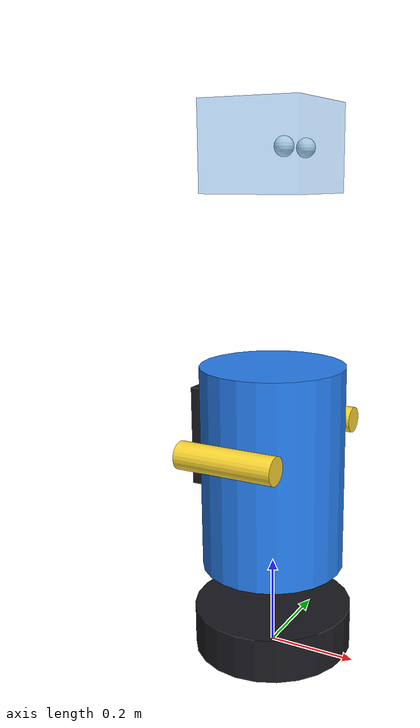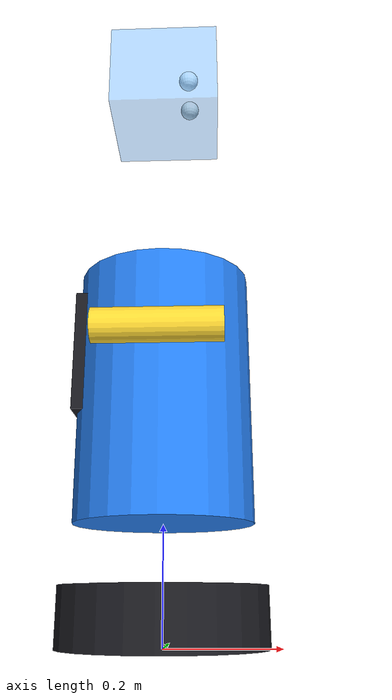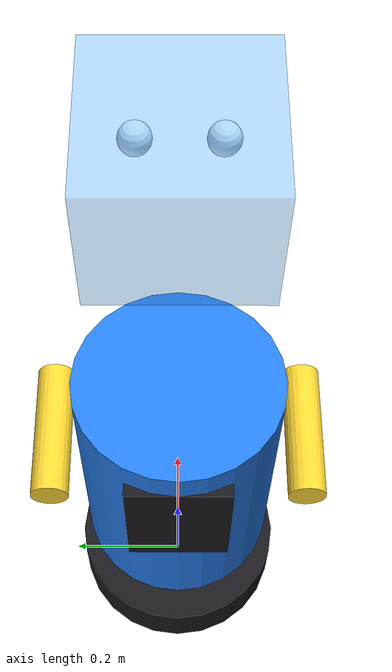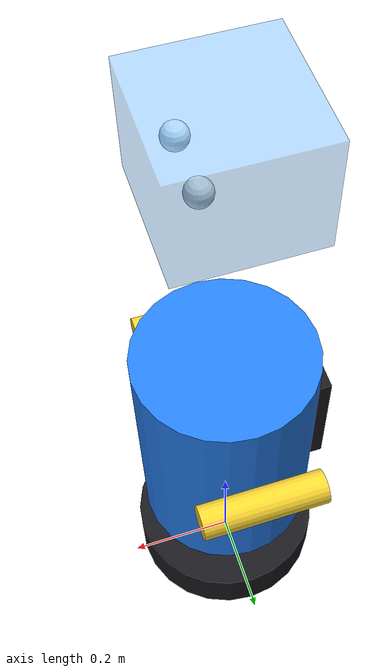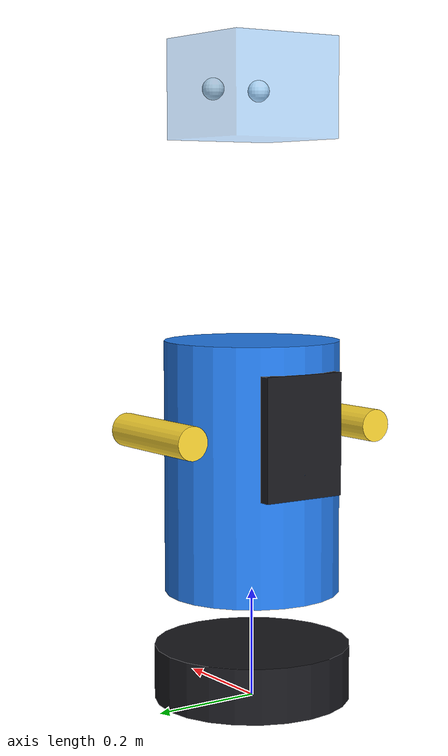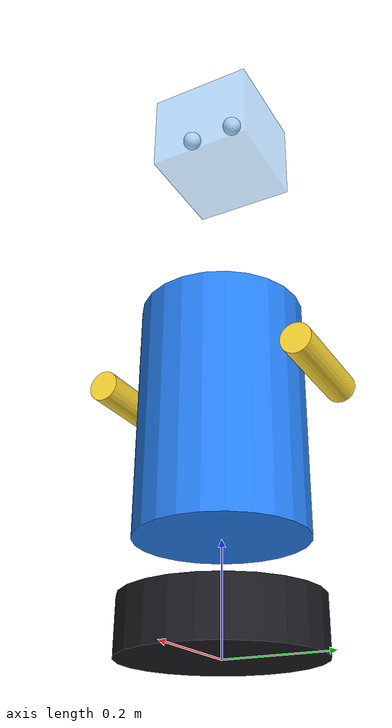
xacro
<?xml version="1.0"?>
<robot xmlns:xacro="http://www.ros.org/wiki/xacro" name="fe_unit">

  <!-- ======= 可调参数 ======= -->
<xacro:property name="scale"        value="1.0"/>
<xacro:property name="body_color"   value="0.15 0.5 0.95 1"/>
<xacro:property name="accent_color" value="1 0.85 0.2 1"/>
<xacro:property name="eye_color"    value="0.95 1 1 1"/>
<xacro:property name="dark"         value="0.1 0.1 0.12 1"/>
  <!-- 简化惯量 -->
  <xacro:macro name="simple_inertia" params="mass">
    <inertial>
      <mass value="${mass}"/>
      <origin xyz="0 0 0" rpy="0 0 0"/>
      <!-- 各向相同的小惯量，防止 RSP/URDF 警告 -->
      <inertia ixx="0.02" ixy="0" ixz="0" iyy="0.02" iyz="0" izz="0.02"/>
    </inertial>
  </xacro:macro>

  <!-- ======= 根链接：base_link ======= -->
  <link name="base_link">
    <!-- “底座”圆柱 -->
    <visual>
      <origin xyz="0 0 ${0.05 * scale}" rpy="0 0 0"/>
      <geometry>
        <cylinder radius="${0.18 * scale}" length="${0.10 * scale}"/>
      </geometry>
      <material name="dark"><color rgba="${dark}"/></material>
    </visual>
    <collision>
      <origin xyz="0 0 ${0.05 * scale}" rpy="0 0 0"/>
      <geometry>
        <cylinder radius="${0.18 * scale}" length="${0.10 * scale}"/>
      </geometry>
    </collision>
    <xacro:simple_inertia mass="${2.0 * scale}"/>
  </link>

  <!-- ======= 躯干（彩色圆柱） ======= -->
  <link name="torso_link">
    <visual>
      <origin xyz="0 0 ${0.33 * scale}" rpy="0 0 0"/>
      <geometry>
        <cylinder radius="${0.16 * scale}" length="${0.46 * scale}"/>
      </geometry>
      <material name="body">
        <color rgba="${body_color}"/>
      </material>
    </visual>
    <collision>
      <origin xyz="0 0 ${0.33 * scale}" rpy="0 0 0"/>
      <geometry>
        <cylinder radius="${0.16 * scale}" length="${0.46 * scale}"/>
      </geometry>
    </collision>
    <xacro:simple_inertia mass="${3.0 * scale}"/>
  </link>

  <joint name="base_to_torso" type="fixed">
    <parent link="base_link"/>
    <child  link="torso_link"/>
    <origin xyz="0 0 ${0.10 * scale}" rpy="0 0 0"/>
  </joint>

  <!-- ======= 头罩（半透明方盒） ======= -->
  <link name="visor_link">
    <visual>
      <origin xyz="0 0 ${0.62 * scale}" rpy="0 0 0"/>
      <geometry>
        <box size="${0.22 * scale} ${0.22 * scale} ${0.18 * scale}"/>
      </geometry>
      <material name="visor">
        <color rgba="0.2 0.6 1.0 0.35"/>  <!-- 半透明 -->
      </material>
    </visual>
    <collision>
      <origin xyz="0 0 ${0.62 * scale}" rpy="0 0 0"/>
      <geometry>
        <box size="${0.22 * scale} ${0.22 * scale} ${0.18 * scale}"/>
      </geometry>
    </collision>
    <xacro:simple_inertia mass="${0.8 * scale}"/>
  </link>

  <joint name="torso_to_visor" type="fixed">
    <parent link="torso_link"/>
    <child  link="visor_link"/>
    <origin xyz="0 0 ${0.39 * scale}" rpy="0 0 0"/>
  </joint>

  <!-- ======= 眼睛（两颗小球） ======= -->
  <link name="eye_left">
    <visual>
      <origin xyz="${0.05 * scale} ${0.05 * scale} ${0.62 * scale}" rpy="0 0 0"/>
      <geometry><sphere radius="${0.02 * scale}"/></geometry>
      <material name="eye"><color rgba="${eye_color}"/></material>
    </visual>
    <xacro:simple_inertia mass="${0.05 * scale}"/>
  </link>
  <joint name="visor_to_eye_left" type="fixed">
    <parent link="visor_link"/>
    <child  link="eye_left"/>
    <origin xyz="0 0 0" rpy="0 0 0"/>
  </joint>

  <link name="eye_right">
    <visual>
      <origin xyz="${0.05 * scale} ${-0.05 * scale} ${0.62 * scale}" rpy="0 0 0"/>
      <geometry><sphere radius="${0.02 * scale}"/></geometry>
      <material name="eye"><color rgba="${eye_color}"/></material>
    </visual>
    <xacro:simple_inertia mass="${0.05 * scale}"/>
  </link>
  <joint name="visor_to_eye_right" type="fixed">
    <parent link="visor_link"/>
    <child  link="eye_right"/>
    <origin xyz="0 0 0" rpy="0 0 0"/>
  </joint>

  <!-- ======= 手臂（两侧圆柱） ======= -->
  <link name="arm_left">
    <visual>
      <origin xyz="0 ${0.20 * scale} ${0.40 * scale}" rpy="0 1.5708 0"/>
      <geometry><cylinder radius="${0.03 * scale}" length="${0.22 * scale}"/></geometry>
      <material name="accent"><color rgba="${accent_color}"/></material>
    </visual>
    <xacro:simple_inertia mass="${0.3 * scale}"/>
  </link>
  <joint name="torso_to_arm_left" type="fixed">
    <parent link="torso_link"/>
    <child  link="arm_left"/>
    <origin xyz="0 0 0" rpy="0 0 0"/>
  </joint>

  <link name="arm_right">
    <visual>
      <origin xyz="0 ${-0.20 * scale} ${0.40 * scale}" rpy="0 1.5708 0"/>
      <geometry><cylinder radius="${0.03 * scale}" length="${0.22 * scale}"/></geometry>
      <material name="accent"><color rgba="${accent_color}"/></material>
    </visual>
    <xacro:simple_inertia mass="${0.3 * scale}"/>
  </link>
  <joint name="torso_to_arm_right" type="fixed">
    <parent link="torso_link"/>
    <child  link="arm_right"/>
    <origin xyz="0 0 0" rpy="0 0 0"/>
  </joint>

  <!-- ======= 背包（盒子） ======= -->
  <link name="backpack">
    <visual>
      <origin xyz="${-0.10 * scale} 0 ${0.40 * scale}" rpy="0 0 0"/>
      <geometry><box size="${0.12 * scale} ${0.16 * scale} ${0.22 * scale}"/></geometry>
      <material name="dark"><color rgba="${dark}"/></material>
    </visual>
    <xacro:simple_inertia mass="${0.4 * scale}"/>
  </link>
  <joint name="torso_to_backpack" type="fixed">
    <parent link="torso_link"/>
    <child  link="backpack"/>
    <origin xyz="0 0 0" rpy="0 0 0"/>
  </joint>

  <!-- ======= 能源核心（发光球体） ======= -->
  <link name="core">
    <visual>
      <origin xyz="${0.0 * scale} ${0.0 * scale} ${0.33 * scale}" rpy="0 0 0"/>
      <geometry><sphere radius="${0.045 * scale}"/></geometry>
      <material name="core"><color rgba="${accent_color}"/></material>
    </visual>
    <xacro:simple_inertia mass="${0.1 * scale}"/>
  </link>
  <joint name="torso_to_core" type="fixed">
    <parent link="torso_link"/>
    <child  link="core"/>
    <origin xyz="0 0 0" rpy="0 0 0"/>
  </joint>

</robot>
